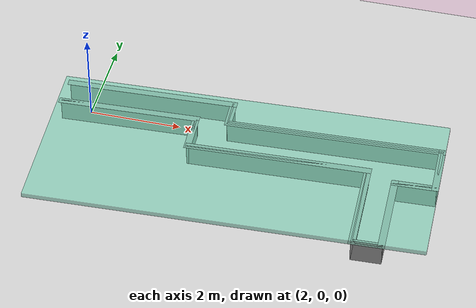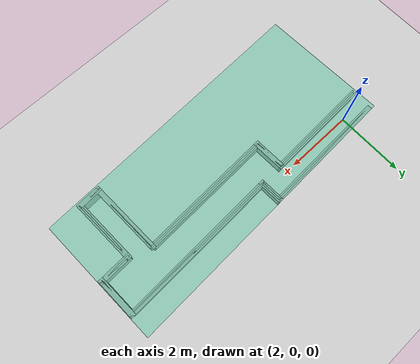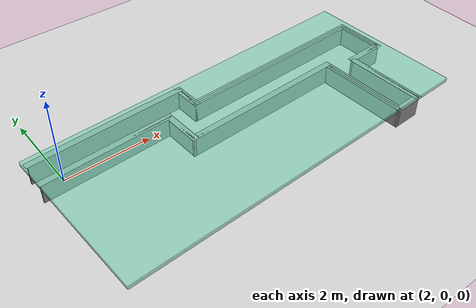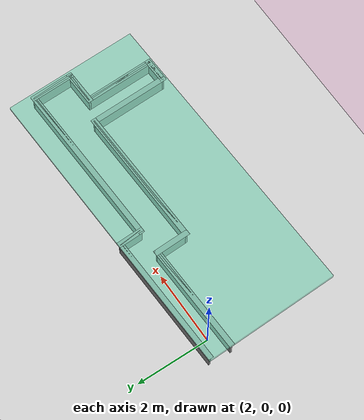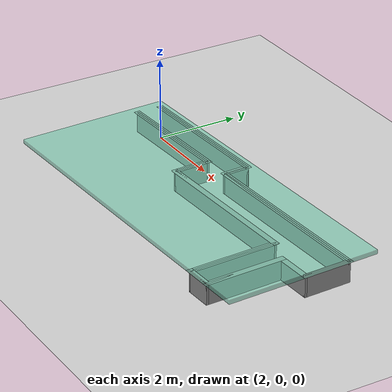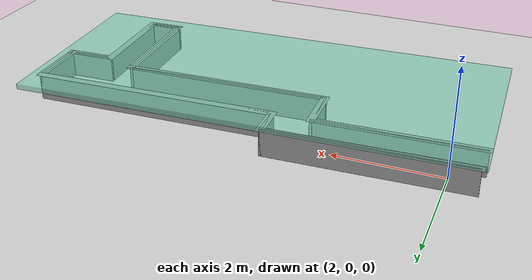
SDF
<sdf version="1.7">
 <world name="default">
  <light name="sun" type="directional">
   <pose>0 0 10 0 -0 0</pose>
   <diffuse>0.8 0.8 0.8 1</diffuse>
   <specular>0.2 0.2 0.2 1</specular>
   <attenuation>
    <range>1000</range>
    <constant>0.9</constant>
    <linear>0.01</linear>
    <quadratic>0.001</quadratic>
   </attenuation>
   <direction>-0.5 0.1 -0.9</direction>
   <spot><inner_angle>0</inner_angle><outer_angle>0</outer_angle><falloff>0</falloff></spot>
  </light>
  <model name="ground_plane">
   <static>1</static>
   <link name="link">
    <collision name="collision">
     <geometry><plane><normal>0 0 1</normal><size>100 100</size></plane></geometry>
     <surface>
      <contact><collide_bitmask>65535</collide_bitmask></contact>
      <friction><ode><mu>100</mu><mu2>50</mu2></ode></friction>
     </surface>
    </collision>
    <visual name="visual">
     <cast_shadows>0</cast_shadows>
     <geometry><plane><normal>0 0 1</normal><size>100 100</size></plane></geometry>
     <material>
      <script><uri>file://media/materials/scripts/gazebo.material</uri><name>Gazebo/Grey</name></script>
     </material>
    </visual>
   </link>
  </model>
  <gravity>0 0 -9.8</gravity>
  <magnetic_field>6e-06 2.3e-05 -4.2e-05</magnetic_field>
  <atmosphere type="adiabatic"/>
  <physics type="ode">
   <max_step_size>0.001</max_step_size>
   <real_time_factor>1</real_time_factor>
   <real_time_update_rate>1000</real_time_update_rate>
  </physics>
  <scene><ambient>0.4 0.4 0.4 1</ambient><background>0.7 0.7 0.7 1</background><shadows>1</shadows></scene>
  <audio><device>default</device></audio>
  <spherical_coordinates>
   <surface_model>EARTH_WGS84</surface_model>
   <latitude_deg>0</latitude_deg>
   <longitude_deg>0</longitude_deg>
   <elevation>0</elevation>
   <heading_deg>0</heading_deg>
  </spherical_coordinates>
  <model name="TubeWorld2">
   <pose>5.63109 -1.29975 0 0 0 -3.10201</pose>
   <link name="Floor_1">
    <collision name="Floor_1_Collision">
     <geometry><box><size>8.4 3.7 0.1</size></box></geometry>
     <pose>0 0 0.05 0 -0 0</pose>
    </collision>
    <visual name="Floor_1_Visual">
     <pose>0 0 0.05 0 -0 0</pose>
     <transparency>0.4</transparency>
     <geometry><box><size>8.4 3.7 0.1</size></box></geometry>
     <material>
      <script><uri>file://media/materials/scripts/gazebo.material</uri><name>Gazebo/Grey</name></script>
      <ambient>0.435294 0.796078 0.67451 1</ambient>
     </material>
     <meta><layer>1</layer></meta>
    </visual>
    <pose>0 -0 0.5 0 -0 0</pose>
   </link>
   <link name="Wall_0">
    <collision name="Wall_0_Collision">
     <geometry><box><size>3 0.05 0.5</size></box></geometry>
     <pose>0 0 0.25 0 -0 0</pose>
    </collision>
    <visual name="Wall_0_Visual">
     <pose>0 0 0.25 0 -0 0</pose>
     <geometry><box><size>3 0.05 0.5</size></box></geometry>
     <material>
      <script><uri>file://media/materials/scripts/gazebo.material</uri><name>Gazebo/Grey</name></script>
      <ambient>1 1 1 1</ambient>
     </material>
     <meta><layer>0</layer></meta>
    </visual>
    <pose>2.65 -1.175 0 0 -0 3.14159</pose>
   </link>
   <link name="Wall_10">
    <collision name="Wall_10_Collision">
     <geometry><box><size>0.9 0.05 0.5</size></box></geometry>
     <pose>0 0 0.25 0 -0 0</pose>
    </collision>
    <visual name="Wall_10_Visual">
     <pose>0 0 0.25 0 -0 0</pose>
     <geometry><box><size>0.9 0.05 0.5</size></box></geometry>
     <material>
      <script><uri>file://media/materials/scripts/gazebo.material</uri><name>Gazebo/Grey</name></script>
      <ambient>1 1 1 1</ambient>
     </material>
     <meta><layer>0</layer></meta>
    </visual>
    <pose>-3.7 -0.075 0 0 -0 3.14159</pose>
   </link>
   <link name="Wall_11">
    <collision name="Wall_11_Collision">
     <geometry><box><size>1.15 0.05 0.5</size></box></geometry>
     <pose>0 0 0.25 0 -0 0</pose>
    </collision>
    <visual name="Wall_11_Visual">
     <pose>0 0 0.25 0 -0 0</pose>
     <geometry><box><size>1.15 0.05 0.5</size></box></geometry>
     <material>
      <script><uri>file://media/materials/scripts/gazebo.material</uri><name>Gazebo/Grey</name></script>
      <ambient>1 1 1 1</ambient>
     </material>
     <meta><layer>0</layer></meta>
    </visual>
    <pose>-4.125 -0.625 0 0 -0 -1.5708</pose>
   </link>
   <link name="Wall_12">
    <collision name="Wall_12_Collision">
     <geometry><box><size>4.65 0.05 0.5</size></box></geometry>
     <pose>0 0 0.25 0 -0 0</pose>
    </collision>
    <visual name="Wall_12_Visual">
     <pose>0 0 0.25 0 -0 0</pose>
     <geometry><box><size>4.65 0.05 0.5</size></box></geometry>
     <material>
      <script><uri>file://media/materials/scripts/gazebo.material</uri><name>Gazebo/Grey</name></script>
      <ambient>1 1 1 1</ambient>
     </material>
     <meta><layer>0</layer></meta>
    </visual>
    <pose>-1.825 -1.175 0 0 -0 0</pose>
   </link>
   <link name="Wall_13">
    <collision name="Wall_13_Collision">
     <geometry><box><size>0.65 0.05 0.5</size></box></geometry>
     <pose>0 0 0.25 0 -0 0</pose>
    </collision>
    <visual name="Wall_13_Visual">
     <pose>0 0 0.25 0 -0 0</pose>
     <geometry><box><size>0.65 0.05 0.5</size></box></geometry>
     <material>
      <script><uri>file://media/materials/scripts/gazebo.material</uri><name>Gazebo/Grey</name></script>
      <ambient>1 1 1 1</ambient>
     </material>
     <meta><layer>0</layer></meta>
    </visual>
    <pose>0.475 -1.475 0 0 -0 -1.5708</pose>
   </link>
   <link name="Wall_14">
    <collision name="Wall_14_Collision">
     <geometry><box><size>3.65 0.05 0.5</size></box></geometry>
     <pose>0 0 0.25 0 -0 0</pose>
    </collision>
    <visual name="Wall_14_Visual">
     <pose>0 0 0.25 0 -0 0</pose>
     <geometry><box><size>3.65 0.05 0.5</size></box></geometry>
     <material>
      <script><uri>file://media/materials/scripts/gazebo.material</uri><name>Gazebo/Grey</name></script>
      <ambient>1 1 1 1</ambient>
     </material>
     <meta><layer>0</layer></meta>
    </visual>
    <pose>2.275 -1.775 0 0 -0 0</pose>
   </link>
   <link name="Wall_27">
    <collision name="Wall_27_Collision"><geometry><box><size>3.1 0.15 0</size></box></geometry></collision>
    <visual name="Wall_27_Visual">
     <geometry><box><size>3.1 0.15 0</size></box></geometry>
     <material>
      <script><uri>file://media/materials/scripts/gazebo.material</uri><name>Gazebo/Grey</name></script>
      <ambient>1 1 1 1</ambient>
     </material>
     <meta><layer>1</layer></meta>
    </visual>
    <pose>2.65 -1.175 0.5 0 -0 3.14159</pose>
   </link>
   <link name="Wall_28">
    <collision name="Wall_28_Collision"><geometry><box><size>1 0.15 0</size></box></geometry></collision>
    <visual name="Wall_28_Visual">
     <geometry><box><size>1 0.15 0</size></box></geometry>
     <material>
      <script><uri>file://media/materials/scripts/gazebo.material</uri><name>Gazebo/Grey</name></script>
      <ambient>1 1 1 1</ambient>
     </material>
     <meta><layer>1</layer></meta>
    </visual>
    <pose>1.175 -0.75 0.5 0 -0 1.5708</pose>
   </link>
   <link name="Wall_29">
    <collision name="Wall_29_Collision"><geometry><box><size>4 0.15 0</size></box></geometry></collision>
    <visual name="Wall_29_Visual">
     <geometry><box><size>4 0.15 0</size></box></geometry>
     <material>
      <script><uri>file://media/materials/scripts/gazebo.material</uri><name>Gazebo/Grey</name></script>
      <ambient>1 1 1 1</ambient>
     </material>
     <meta><layer>1</layer></meta>
    </visual>
    <pose>-0.75 -0.325 0.5 0 -0 3.14159</pose>
   </link>
   <link name="Wall_30">
    <collision name="Wall_30_Collision"><geometry><box><size>2.25 0.15 0</size></box></geometry></collision>
    <visual name="Wall_30_Visual">
     <geometry><box><size>2.25 0.15 0</size></box></geometry>
     <material>
      <script><uri>file://media/materials/scripts/gazebo.material</uri><name>Gazebo/Grey</name></script>
      <ambient>1 1 1 1</ambient>
     </material>
     <meta><layer>1</layer></meta>
    </visual>
    <pose>-2.675 0.725 0.5 0 -0 1.5708</pose>
   </link>
   <link name="Wall_31">
    <collision name="Wall_31_Collision"><geometry><box><size>0.75 0.15 0</size></box></geometry></collision>
    <visual name="Wall_31_Visual">
     <geometry><box><size>0.75 0.15 0</size></box></geometry>
     <material>
      <script><uri>file://media/materials/scripts/gazebo.material</uri><name>Gazebo/Grey</name></script>
      <ambient>1 1 1 1</ambient>
     </material>
     <meta><layer>1</layer></meta>
    </visual>
    <pose>-2.975 1.775 0.5 0 -0 3.14159</pose>
   </link>
   <link name="Wall_32">
    <collision name="Wall_32_Collision"><geometry><box><size>2 0.15 0</size></box></geometry></collision>
    <visual name="Wall_32_Visual">
     <geometry><box><size>2 0.15 0</size></box></geometry>
     <material>
      <script><uri>file://media/materials/scripts/gazebo.material</uri><name>Gazebo/Grey</name></script>
      <ambient>1 1 1 1</ambient>
     </material>
     <meta><layer>1</layer></meta>
    </visual>
    <pose>-3.275 0.85 0.5 0 -0 -1.5708</pose>
   </link>
   <link name="Wall_33">
    <collision name="Wall_33_Collision"><geometry><box><size>1 0.15 0</size></box></geometry></collision>
    <visual name="Wall_33_Visual">
     <geometry><box><size>1 0.15 0</size></box></geometry>
     <material>
      <script><uri>file://media/materials/scripts/gazebo.material</uri><name>Gazebo/Grey</name></script>
      <ambient>1 1 1 1</ambient>
     </material>
     <meta><layer>1</layer></meta>
    </visual>
    <pose>-3.7 -0.075 0.5 0 -0 3.14159</pose>
   </link>
   <link name="Wall_34">
    <collision name="Wall_34_Collision"><geometry><box><size>1.25 0.15 0</size></box></geometry></collision>
    <visual name="Wall_34_Visual">
     <geometry><box><size>1.25 0.15 0</size></box></geometry>
     <material>
      <script><uri>file://media/materials/scripts/gazebo.material</uri><name>Gazebo/Grey</name></script>
      <ambient>1 1 1 1</ambient>
     </material>
     <meta><layer>1</layer></meta>
    </visual>
    <pose>-4.125 -0.625 0.5 0 -0 -1.5708</pose>
   </link>
   <link name="Wall_35">
    <collision name="Wall_35_Collision"><geometry><box><size>4.75 0.15 0</size></box></geometry></collision>
    <visual name="Wall_35_Visual">
     <geometry><box><size>4.75 0.15 0</size></box></geometry>
     <material>
      <script><uri>file://media/materials/scripts/gazebo.material</uri><name>Gazebo/Grey</name></script>
      <ambient>1 1 1 1</ambient>
     </material>
     <meta><layer>1</layer></meta>
    </visual>
    <pose>-1.825 -1.175 0.5 0 -0 0</pose>
   </link>
   <link name="Wall_36">
    <collision name="Wall_36_Collision"><geometry><box><size>0.75 0.15 0</size></box></geometry></collision>
    <visual name="Wall_36_Visual">
     <geometry><box><size>0.75 0.15 0</size></box></geometry>
     <material>
      <script><uri>file://media/materials/scripts/gazebo.material</uri><name>Gazebo/Grey</name></script>
      <ambient>1 1 1 1</ambient>
     </material>
     <meta><layer>1</layer></meta>
    </visual>
    <pose>0.475 -1.475 0.5 0 -0 -1.5708</pose>
   </link>
   <link name="Wall_37">
    <collision name="Wall_37_Collision"><geometry><box><size>3.75 0.15 0</size></box></geometry></collision>
    <visual name="Wall_37_Visual">
     <geometry><box><size>3.75 0.15 0</size></box></geometry>
     <material>
      <script><uri>file://media/materials/scripts/gazebo.material</uri><name>Gazebo/Grey</name></script>
      <ambient>1 1 1 1</ambient>
     </material>
     <meta><layer>1</layer></meta>
    </visual>
    <pose>2.275 -1.775 0.5 0 -0 0</pose>
   </link>
   <link name="Wall_5">
    <collision name="Wall_5_Collision">
     <geometry><box><size>0.9 0.05 0.5</size></box></geometry>
     <pose>0 0 0.25 0 -0 0</pose>
    </collision>
    <visual name="Wall_5_Visual">
     <pose>0 0 0.25 0 -0 0</pose>
     <geometry><box><size>0.9 0.05 0.5</size></box></geometry>
     <material>
      <script><uri>file://media/materials/scripts/gazebo.material</uri><name>Gazebo/Grey</name></script>
      <ambient>1 1 1 1</ambient>
     </material>
     <meta><layer>0</layer></meta>
    </visual>
    <pose>1.175 -0.75 0 0 -0 1.5708</pose>
   </link>
   <link name="Wall_6">
    <collision name="Wall_6_Collision">
     <geometry><box><size>3.9 0.05 0.5</size></box></geometry>
     <pose>0 0 0.25 0 -0 0</pose>
    </collision>
    <visual name="Wall_6_Visual">
     <pose>0 0 0.25 0 -0 0</pose>
     <geometry><box><size>3.9 0.05 0.5</size></box></geometry>
     <material>
      <script><uri>file://media/materials/scripts/gazebo.material</uri><name>Gazebo/Grey</name></script>
      <ambient>1 1 1 1</ambient>
     </material>
     <meta><layer>0</layer></meta>
    </visual>
    <pose>-0.75 -0.325 0 0 -0 3.14159</pose>
   </link>
   <link name="Wall_7">
    <collision name="Wall_7_Collision">
     <geometry><box><size>2.15 0.05 0.5</size></box></geometry>
     <pose>0 0 0.25 0 -0 0</pose>
    </collision>
    <visual name="Wall_7_Visual">
     <pose>0 0 0.25 0 -0 0</pose>
     <geometry><box><size>2.15 0.05 0.5</size></box></geometry>
     <material>
      <script><uri>file://media/materials/scripts/gazebo.material</uri><name>Gazebo/Grey</name></script>
      <ambient>1 1 1 1</ambient>
     </material>
     <meta><layer>0</layer></meta>
    </visual>
    <pose>-2.675 0.725 0 0 -0 1.5708</pose>
   </link>
   <link name="Wall_8">
    <collision name="Wall_8_Collision">
     <geometry><box><size>0.65 0.05 0.5</size></box></geometry>
     <pose>0 0 0.25 0 -0 0</pose>
    </collision>
    <visual name="Wall_8_Visual">
     <pose>0 0 0.25 0 -0 0</pose>
     <geometry><box><size>0.65 0.05 0.5</size></box></geometry>
     <material>
      <script><uri>file://media/materials/scripts/gazebo.material</uri><name>Gazebo/Grey</name></script>
      <ambient>1 1 1 1</ambient>
     </material>
     <meta><layer>0</layer></meta>
    </visual>
    <pose>-2.975 1.775 0 0 -0 3.14159</pose>
   </link>
   <link name="Wall_9">
    <collision name="Wall_9_Collision">
     <geometry><box><size>1.9 0.05 0.5</size></box></geometry>
     <pose>0 0 0.25 0 -0 0</pose>
    </collision>
    <visual name="Wall_9_Visual">
     <pose>0 0 0.25 0 -0 0</pose>
     <geometry><box><size>1.9 0.05 0.5</size></box></geometry>
     <material>
      <script><uri>file://media/materials/scripts/gazebo.material</uri><name>Gazebo/Grey</name></script>
      <ambient>1 1 1 1</ambient>
     </material>
     <meta><layer>0</layer></meta>
    </visual>
    <pose>-3.275 0.85 0 0 -0 -1.5708</pose>
   </link>
   <static>1</static>
  </model>
 </world>
</sdf>
